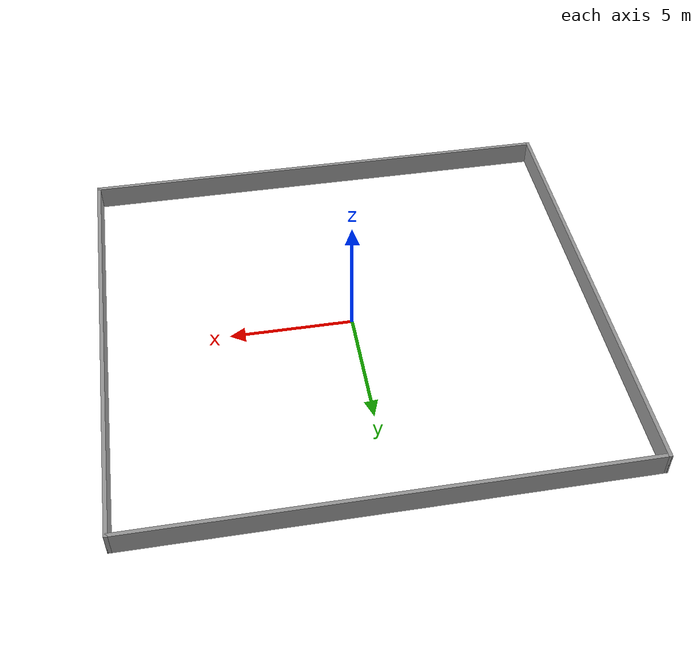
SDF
<?xml version='1.0'?>
<sdf version='1.6'>
  <model name='map1'>
    <pose frame=''>0.041 0.099 0 0 -0 0</pose>
    <link name='Wall_0'>
      <collision name='Wall_0_Collision'>
        <geometry>
          <box>
            <size>20 0.15 1</size>
          </box>
        </geometry>
        <pose frame=''>0 0 0.5 0 -0 0</pose>
      </collision>
      <visual name='Wall_0_Visual'>
        <pose frame=''>0 0 0.5 0 -0 0</pose>
        <geometry>
          <box>
            <size>20 0.15 1</size>
          </box>
        </geometry>
        <material>
          <script>
            <uri>file://media/materials/scripts/gazebo.material</uri>
            <name>Gazebo/Grey</name>
          </script>
          <ambient>1 1 1 1</ambient>
        </material>
        <meta>
          <layer>0</layer>
        </meta>
      </visual>
      <pose frame=''>0 9.175 0 0 -0 0</pose>
    </link>
    <link name='Wall_3'>
      <collision name='Wall_3_Collision'>
        <geometry>
          <box>
            <size>18.5 0.15 1</size>
          </box>
        </geometry>
        <pose frame=''>0 0 0.5 0 -0 0</pose>
      </collision>
      <visual name='Wall_3_Visual'>
        <pose frame=''>0 0 0.5 0 -0 0</pose>
        <geometry>
          <box>
            <size>18.5 0.15 1</size>
          </box>
        </geometry>
        <material>
          <script>
            <uri>file://media/materials/scripts/gazebo.material</uri>
            <name>Gazebo/Grey</name>
          </script>
          <ambient>1 1 1 1</ambient>
        </material>
        <meta>
          <layer>0</layer>
        </meta>
      </visual>
      <pose frame=''>9.925 0 0 0 -0 -1.5708</pose>
    </link>
    <link name='Wall_4'>
      <collision name='Wall_4_Collision'>
        <geometry>
          <box>
            <size>20 0.15 1</size>
          </box>
        </geometry>
        <pose frame=''>0 0 0.5 0 -0 0</pose>
      </collision>
      <visual name='Wall_4_Visual'>
        <pose frame=''>0 0 0.5 0 -0 0</pose>
        <geometry>
          <box>
            <size>20 0.15 1</size>
          </box>
        </geometry>
        <material>
          <script>
            <uri>file://media/materials/scripts/gazebo.material</uri>
            <name>Gazebo/Grey</name>
          </script>
          <ambient>1 1 1 1</ambient>
        </material>
        <meta>
          <layer>0</layer>
        </meta>
      </visual>
      <pose frame=''>0 -9.175 0 0 -0 3.14159</pose>
    </link>
    <link name='Wall_5'>
      <collision name='Wall_5_Collision'>
        <geometry>
          <box>
            <size>18.5 0.15 1</size>
          </box>
        </geometry>
        <pose frame=''>0 0 0.5 0 -0 0</pose>
      </collision>
      <visual name='Wall_5_Visual'>
        <pose frame=''>0 0 0.5 0 -0 0</pose>
        <geometry>
          <box>
            <size>18.5 0.15 1</size>
          </box>
        </geometry>
        <material>
          <script>
            <uri>file://media/materials/scripts/gazebo.material</uri>
            <name>Gazebo/Grey</name>
          </script>
          <ambient>1 1 1 1</ambient>
        </material>
        <meta>
          <layer>0</layer>
        </meta>
      </visual>
      <pose frame=''>-9.925 0 0 0 -0 1.5708</pose>
    </link>
    <static>1</static>
  </model>
</sdf>
